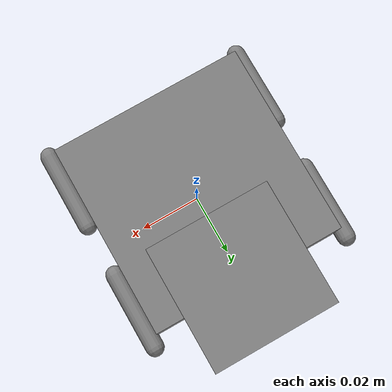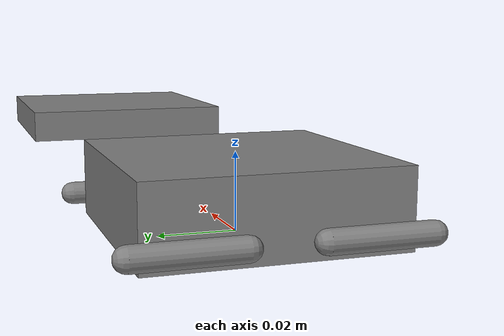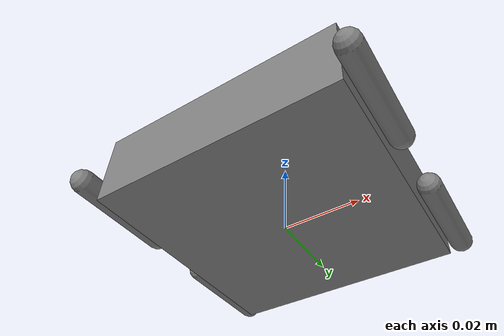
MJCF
<mujoco model="four_short_legs">
    <compiler inertiafromgeom="true" settotalmass="0.05"/>
	<default>
		<joint armature="0" damping="1" limited="true" frictionloss="0"/>
        <geom friction="0.5 0.1 0.1"/>
        <position kp="10"/>
	</default>
	<option gravity="0 0 -9.8" integrator="Euler" timestep="0.02"/>
	<size nstack="3000"/>
    <worldbody>
        <body name="base" pos="0 0 0.01">
            <geom name="base" pos="0 0 0.0" type="box" size="0.032 0.032 0.01" euler="0 0 0"/>
            <body name="leg_rb" pos="0.035 -0.022 -0.005">
                <joint axis="1 0 0" name="servo_rb" pos="0 0 0" range="0 180" type="hinge"/>
                <geom fromto="0 -0.013 0 0 0.013 0" name="leg" size="0.003 0.002" type="capsule"/>
            </body>
            <body name="leg_rf" pos="0.035 0.022 -0.005">
                <joint axis="1 0 0" name="servo_rf" pos="0 0 0" range="-180 0" type="hinge"/>
                <geom fromto="0 -0.013 0 0 0.013 0" name="leg" size="0.003 0.002" type="capsule"/>
            </body>
            <body name="leg_lb" pos="-0.035 -0.022 -0.005">
                <joint axis="1 0 0" name="servo_lb" pos="0 0 0" range="0 180" type="hinge"/>
                <geom fromto="0 -0.013 0 0 0.013 0" name="leg" size="0.003 0.002" type="capsule"/>
            </body>
            <body name="leg_lf" pos="-0.035 0.022 -0.005">
                <joint axis="1 0 0" name="servo_lf" pos="0 0 0" range="-180 0" type="hinge"/>
                <geom fromto="0 -0.013 0 0 0.013 0" name="leg" size="0.003 0.002" type="capsule"/>
            </body>
            <!-- IMU sensor box -->
            <body name="IMU" pos="0.0025 0.03 0.02" euler="0 0 0">
                <geom name="IMU" pos="0 0 0" type="box" size="0.02 0.02 0.003" euler="0 0 0"/>
                <joint armature="0" damping="0" limited="false" axis="0 0 0" name="IMUroot" pos="0 0 0" stiffness="0" type="fixed"/>
            </body>
        </body>
    </worldbody>
    <actuator>
        <position joint="servo_rb" name="servo_rb"/>
        <position joint="servo_rf" name="servo_rf"/>
        <position joint="servo_lb" name="servo_lb"/>
        <position joint="servo_lf" name="servo_lf"/>
    </actuator>
</mujoco>
